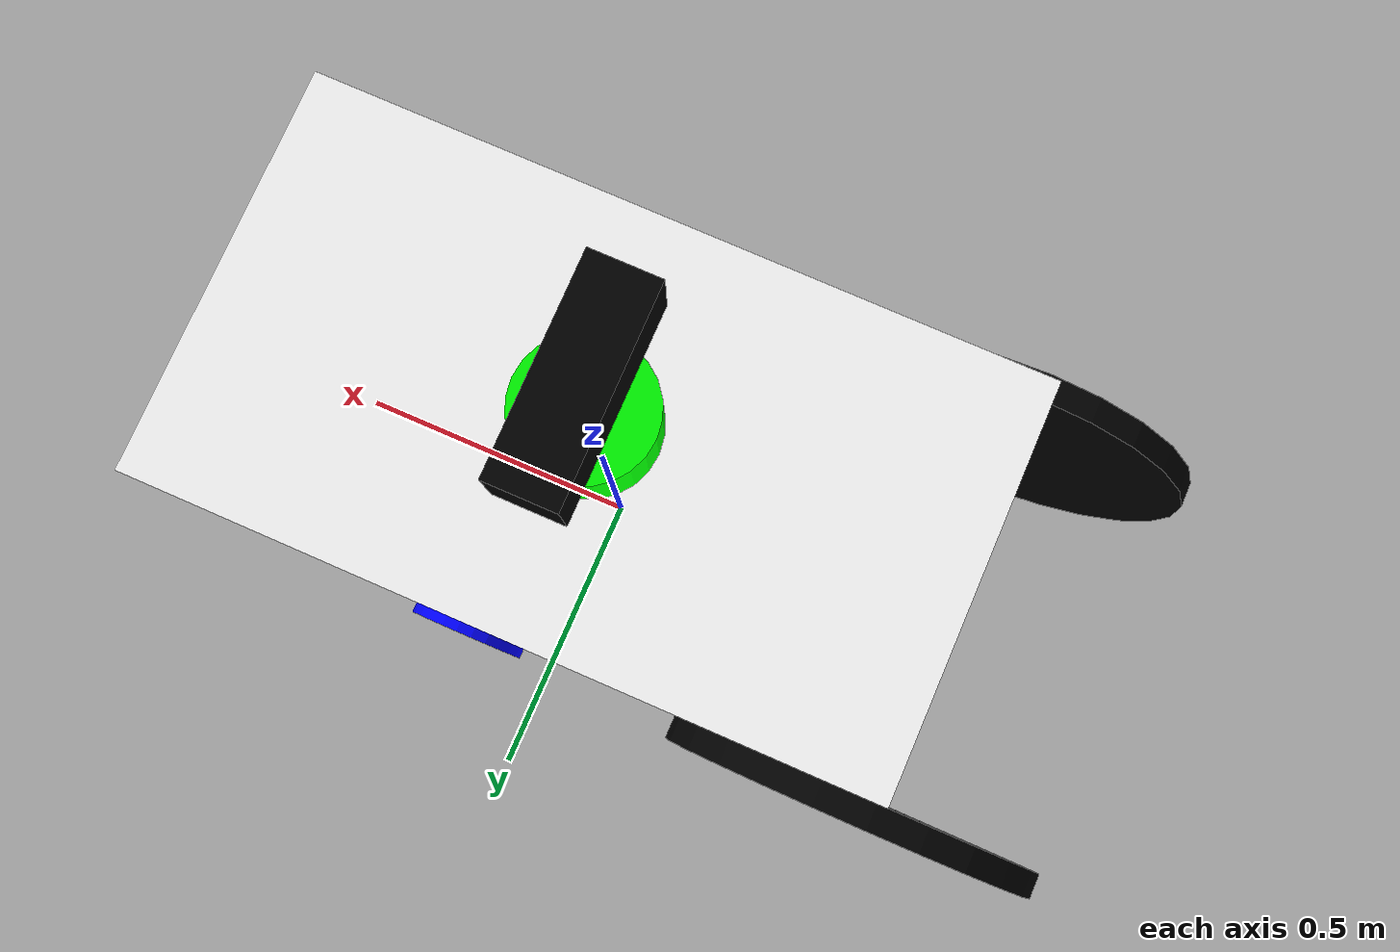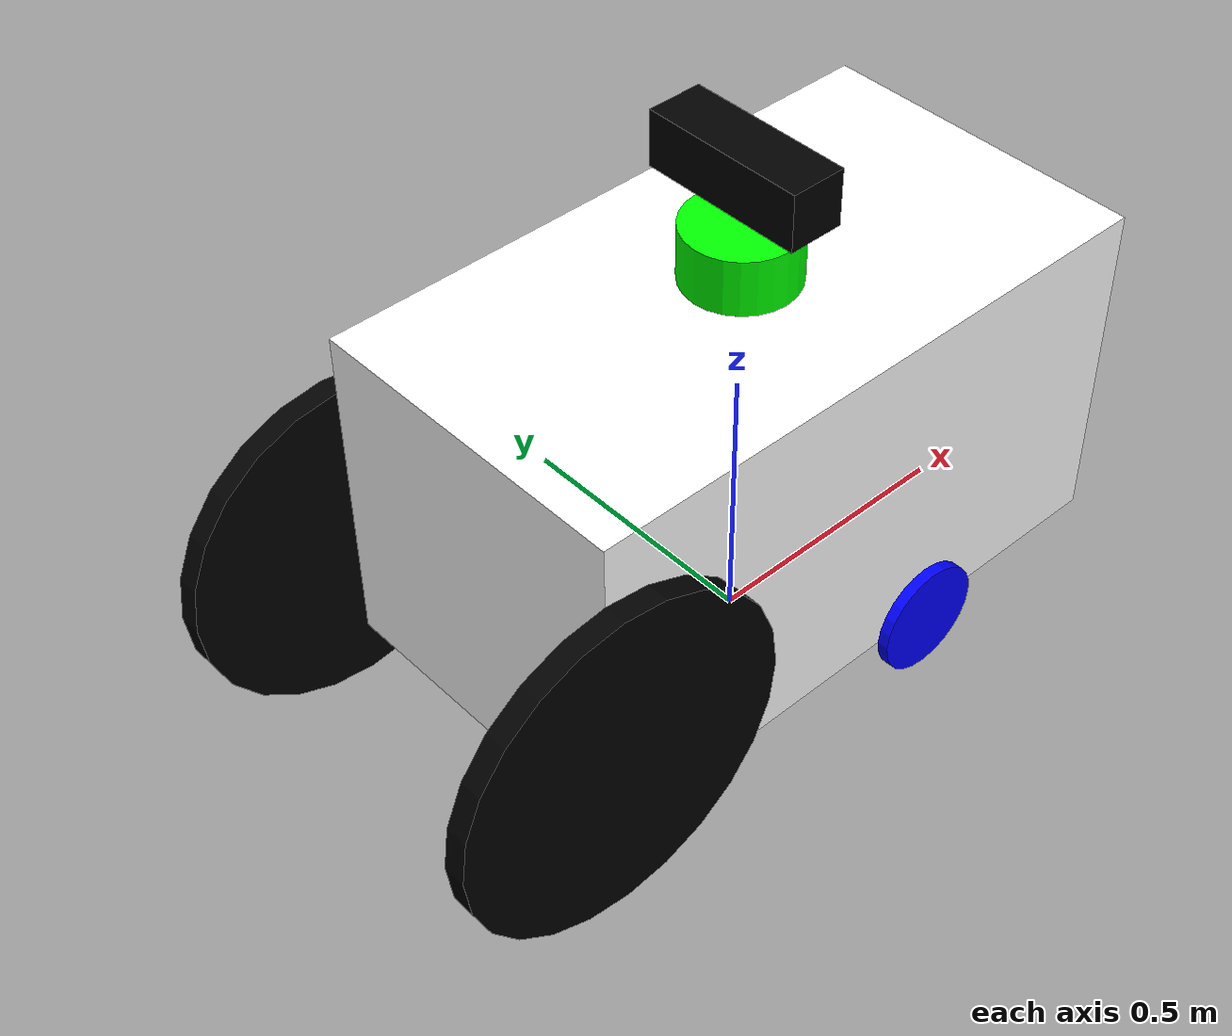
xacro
<?xml version="1.0"?>
<robot xmlns:xacro="http://www.ros.org/wiki/xacro" >

    <!--                        Geometry & Constants                    -->

    <!-- Pi Constant -->
    <xacro:property name="pi_const" value="3.14159265" />

    <!-- Body Dimensions -->
    <xacro:property name="l" value="1.1049"/>
    <xacro:property name="w" value="0.6096"/>
    <xacro:property name="h" value="0.6144"/>   <!-- actual: 0.9144-->

    <!-- Wheel Dimension -->
    <xacro:property name="r_wheel" value="0.3048"/>
    <xacro:property name="t_wheel" value="0.0400"/>

    <!-- Caster Dimension -->
    <xacro:property name="r_caster" value="0.1016"/>
    <xacro:property name="t_caster" value="0.0200"/>

    <!-- Distance btw Centers -->
    <xacro:property name="body_to_gnd" value="${h/2+r_caster}"/>
    <xacro:property name="wheel_to_body_side" value="0.55245"/>
    <xacro:property name="caster_to_body_side" value="0.14605"/>
    <xacro:property name="wheel_to_body_top" value="${w/2+t_wheel/2}"/>
    <xacro:property name="caster_to_body_top" value="${w/2+t_caster/2}"/>

    <!-- Material Density -->
    <xacro:property name="d_body" value="7850.0"/>
    <xacro:property name="d_wheel" value="7850.0"/>
    <xacro:property name="d_caster" value="7850.0"/>

    <!-- Wheelchair Mass -->
    <xacro:property name="m_body" value="${d_body*l*w*h}"/>
    <xacro:property name="m_wheel" value="${d_wheel*pi_const*r_wheel*r_wheel*t_wheel}"/>
    <xacro:property name="m_caster" value="${d_caster*pi_const*r_caster*r_caster*t_caster}"/>

    <!-- Moment of Inertia of Body -->
    <xacro:property name="Ix_body" value="${(1/12)*m_body*(h*h+w*w)}"/>
    <xacro:property name="Iy_body" value="${(1/12)*m_body*(l*l+h*h)}"/>
    <xacro:property name="Iz_body" value="${(1/12)*m_body*(l*l+w*w)}"/>

    <!-- Moment of Inertia of Wheel -->
    <xacro:property name="I_wheel" value="${(1.0/12.0)*m_wheel*(3.0*r_wheel*r_wheel+t_wheel*t_wheel)}"/>
    <xacro:property name="Iz_wheel" value="${0.5*m_wheel*r_wheel*r_wheel}"/>

    <!-- Moment of Inertia of Caster -->
    <xacro:property name="I_caster" value="${(1.0/12.0)*m_caster*(3.0*r_caster*r_caster+t_caster*t_caster)}"/>
    <xacro:property name="Iz_caster" value="${0.5*m_caster*r_caster*r_caster}"/>

    <!-- Macro for Inertial Section -->
    <xacro:macro name="inertia_body">
        <!-- displacement & rientation of center of mass frame of link to ground -->
        <inertial>
            <origin xyz="0 0 ${body_to_gnd}" rpy="0 0 0"/>
            <mass value="${m_body}"/>
            <inertia ixx="${Ix_body}" ixy="0.0" ixz="0.0"
                     iyy="${Iy_body}" iyz="0.0"
                     izz="${Iz_body}"/>
        </inertial>
    </xacro:macro>

    <xacro:macro name="inertia_wheel">
        <inertial>
            <origin xyz="0 0 0" rpy="${pi_const/2} 0 0"/>
            <mass value="${m_wheel}"/>
            <inertia ixx="${I_wheel}" ixy="0.0" ixz="0.0"
                     iyy="${I_wheel}" iyz="0.0"
                     izz="${Iz_wheel}"/>
        </inertial>
    </xacro:macro>

    <xacro:macro name="inertia_caster">
        <inertial>
            <origin xyz="0 0 0" rpy="${pi_const/2} 0 0"/>
            <mass value="${m_caster}"/>
            <inertia ixx="${I_caster}" ixy="0.0" ixz="0.0"
                     iyy="${I_caster}" iyz="0.0"
                     izz="${Iz_caster}"/>
        </inertial>
    </xacro:macro>

    <!-- Additional Files -->
    <xacro:include filename="$(find wheelchair_one)/description/gazebo_control"/>

    <!-- colors -->
    <material name="blue">
        <color rgba="0 0 1 1"/>
    </material>

    <material name="red">
        <color rgba="0 1 0 1"/>
    </material>

    <material name="grey">
        <color rgba="1 1 1 1"/>
    </material>

    <material name="light_grey">
        <color rgba="0.5 0.5 0.5 0.5"/>
    </material>

    <material name="black">
        <color rgba="0 0 0 1"/>
    </material>

    <!--                            Links & Joints                      -->
    <!-- Base Link-->
    <link name="base_link"></link>

    <!-- Base_Footprint Link -->
    <joint name="base_footprint_joint" type="fixed">
        <parent link="base_link"/>
        <child link="base_footprint"/>
        <origin xyz="0 0 0" rpy="0 0 0"/>
    </joint>

    <link name="base_footprint"></link>

    <!-- Chassis-->
    <joint name="chassis_joint" type="fixed">
        <parent link="base_link"/>
        <child link="chassis"/>
    </joint>

    <link name="chassis">
        <visual>
            <origin xyz="0 0 ${body_to_gnd}" rpy="0 0 0"/>
            <geometry>
                <box size="${l} ${w} ${h}"/>
            </geometry>
            <material name="grey"/>
        </visual>

        <collision>
            <origin xyz="0 0 ${body_to_gnd}" rpy="0 0 0"/>
            <geometry>
                <box size="${l} ${w} ${h}"/>
            </geometry>
        </collision>

        <xacro:inertia_body/>
    </link>

    <!-- LEFT WHEEL LINK -->
    <joint name="left_wheel_joint" type="continuous">
        <parent link="chassis"/>
        <child link="left_wheel"/>
        <origin xyz="${-wheel_to_body_side} ${-wheel_to_body_top} ${r_wheel}" rpy="0 0 0" />
        <axis xyz="0 1 0"/>
        <limit effort="50000" velocity="10"/>
        <dynamic damping="1.0" friction="1.0"/>
    </joint>

    <link name="left_wheel">
        <visual>
            <origin xyz="0 0 0" rpy="${pi_const/2} 0 0"/>
            <geometry>
                <cylinder radius="${r_wheel}" length="${t_wheel}"/>
            </geometry>
            <material name="black"/>
        </visual>

        <collision>
            <origin xyz="0 0 0" rpy="${pi_const/2} 0 0"/>
            <geometry>
                <cylinder radius="${r_wheel}" length="${t_wheel}"/>
            </geometry>
        </collision>

        <xacro:inertia_wheel/>
    </link>

    <!-- RIGHT WHEEL LINK -->
    <joint name="right_wheel_joint" type="continuous">
        <parent link="chassis"/>
        <child link="right_wheel"/>
        <origin xyz="${-wheel_to_body_side} ${wheel_to_body_top} ${r_wheel}" rpy="0 0 0" />
        <axis xyz="0 1 0"/>
        <limit effort="50000" velocity="10"/>
        <dynamic damping="1.0" friction="1.0"/>
    </joint>

    <link name="right_wheel">
        <visual>
            <origin xyz="0 0 0" rpy="${pi_const/2} 0 0"/>
            <geometry>
                <cylinder radius="${r_wheel}" length="${t_wheel}"/>
            </geometry>
            <material name="black"/>
        </visual>
        <collision>
            <origin xyz="0 0 0" rpy="${pi_const/2} 0 0"/>
            <geometry>
                <cylinder radius="${r_wheel}" length="${t_wheel}"/>
            </geometry>
        </collision>

        <xacro:inertia_wheel/>
    </link>

    <!-- CASTER LEFT WHEEL LINK -->
    <joint name="caster_left_joint" type="continuous">
        <parent link="chassis"/>
        <child link="caster_left"/>
        <origin xyz="${caster_to_body_side} ${-caster_to_body_top}  ${r_caster}" rpy="0 0 0" />
        <axis xyz="0 1 0"/>
        <limit effort="50000" velocity="10"/>
        <dynamic damping="1.0" friction="1.0"/>
    </joint>

    <link name="caster_left">
        <visual>
            <origin xyz="0 0 0" rpy="${pi_const/2} 0 0"/>
            <geometry>
                <cylinder radius="${r_caster}" length="${t_caster}"/>
            </geometry>
            <material name="blue"/>
        </visual>

        <collision>
            <origin xyz="0 0 0" rpy="${pi_const/2} 0 0"/>
            <geometry>
                <cylinder radius="${r_caster}" length="${t_caster}"/>
            </geometry>
        </collision>

        <xacro:inertia_caster/>
    </link>

    <!-- CASTER RIGHT WHEEL LINK -->
    <joint name="caster_right_joint" type="continuous">
        <parent link="chassis"/>
        <child link="caster_right"/>
        <origin xyz="${caster_to_body_side} ${caster_to_body_top} ${r_caster}" rpy="0 0 0" />
        <axis xyz="0 1 0"/>
        <limit effort="50000" velocity="10"/>
        <dynamic damping="1.0" friction="1.0"/>
    </joint>

    <link name="caster_right">
        <visual>
            <origin xyz="0 0 0" rpy="${pi_const/2} 0 0"/>
            <geometry>
                <cylinder radius="${r_caster}" length="${t_caster}"/>
            </geometry>
            <material name="blue"/>
        </visual>
        <collision>
            <origin xyz="0 0 0" rpy="${pi_const/2} 0 0"/>
            <geometry>
                <cylinder radius="${r_caster}" length="${t_caster}"/>
            </geometry>
        </collision>

        <xacro:inertia_caster/>
    </link>

    <!--                            LiDAR                               -->
    <joint name="laser_joint" type="fixed">
        <origin xyz="0 0 ${h+r_caster}" rpy="0 0 0"/>
        <parent link="chassis"/>
        <child link="laser_frame"/>
    </joint>

    <link name="laser_frame">
        <visual>
            <origin xyz="0 0 0.05" rpy="0 0 0"/>
            <geometry>
                <cylinder length="0.1" radius="0.1"/>
            </geometry>
            <material name="red"/>
        </visual>

        <collision name='collision'>
            <origin xyz="0 0 0.05" rpy="0 0 0"/>
            <geometry>
                <cylinder length="0.1" radius="0.1"/>
            </geometry>
        </collision>

        <inertial>
            <mass value="1e-6"/>
            <origin xyz="0 0 0.05" rpy="0 0 0"/>
            <inertia ixx="1e-6" ixy="0" ixz="0"
                     iyy="1e-6" iyz="0" izz="1e-6"/>
        </inertial>
    </link>

    <!--                         Depth Camera                           -->
    <joint name="camera_joint" type="fixed">
        <parent link="chassis"/>
        <child link="camera_link"/>
        <origin xyz="0 0 ${h+r_caster+0.2}" rpy="0 0 0"/>
    </joint>

    <link name="camera_link">
        <visual>
            <geometry>
                <box size="0.1 0.3 0.1"/>
            </geometry>
            <material name="black"/>
        </visual>

        <collision>
            <geometry>
                <box size="0.1 0.3 0.1"/>
            </geometry>
        </collision>

        <inertial>
            <mass value="0.1"/>
            <origin xyz="0 0 0" rpy="0 0 0"/>
            <inertia ixx="0.000166667" ixy="0" ixz="0"
                     iyy="0.000166667" iyz="0" izz="0.000166667"/>
        </inertial>
    </link>

    <joint name="camera_optical_joint" type="fixed">
        <parent link="camera_link"/>
        <child link="camera_link_optical"/>
        <origin xyz="0 0 0" rpy="${-pi/2} 0 ${-pi/2}"/>
    </joint>

    <link name="camera_link_optical"/>

</robot>
